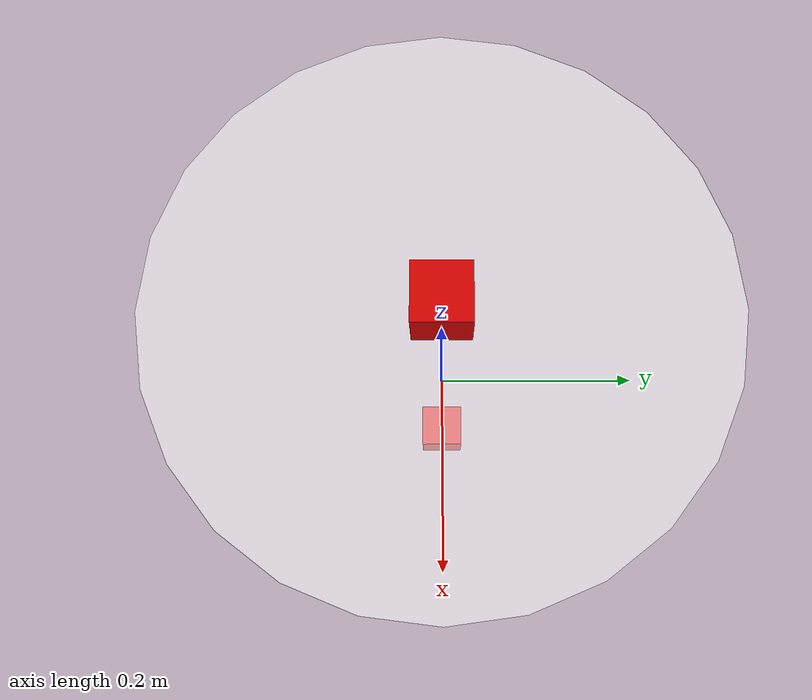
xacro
<?xml version="1.0"?>
<robot name="cylinder_robot" xmlns:xacro="http://www.ros.org/wiki/xacro">

  <!-- ========== 机器人主体 ========== -->
  <xacro:macro name="base_link" params="length radius">
    <link name="base_link">
        <!-- 视觉属性 -->
        <visual>
        <geometry>
            <cylinder radius="${radius}" length="${length}"/>
        </geometry>
        <material name="white">
            <color rgba="1.0 1.0 1.0 0.5"/>
        </material>
        </visual>
    </link>
  </xacro:macro>

  <!-- ========== IMU传感器 ========== -->
  <xacro:macro name="imu_link" params="imu_name xyz">
    <link name="${imu_name}_link">
        <visual>
        <geometry>
            <box size="0.05 0.05 0.05"/>
        </geometry>
        <material name="black">
            <color rgba="0.8 0 0 1"/>
        </material>
        </visual>
    </link>

    <!-- ========== 固定IMU到机器人顶部 ========== -->
    <joint name="${imu_name}_joint" type="fixed">
        <parent link="base_link"/>
        <child link="${imu_name}_link"/>
        <!-- 位置：机器人顶部中心 (0.5/2 + 0.05/2 = 0.275) -->
        <origin xyz="${xyz}" rpy="0.0 0.0 0.0"/>
    </joint>
  </xacro:macro>

  <xacro:base_link length="0.5" radius="0.25"/>
  <xacro:imu_link imu_name="imu_up" xyz="0 0 0.275"/>
  <xacro:imu_link imu_name="imu_down" xyz="0 0 -0.275"/>
</robot>
